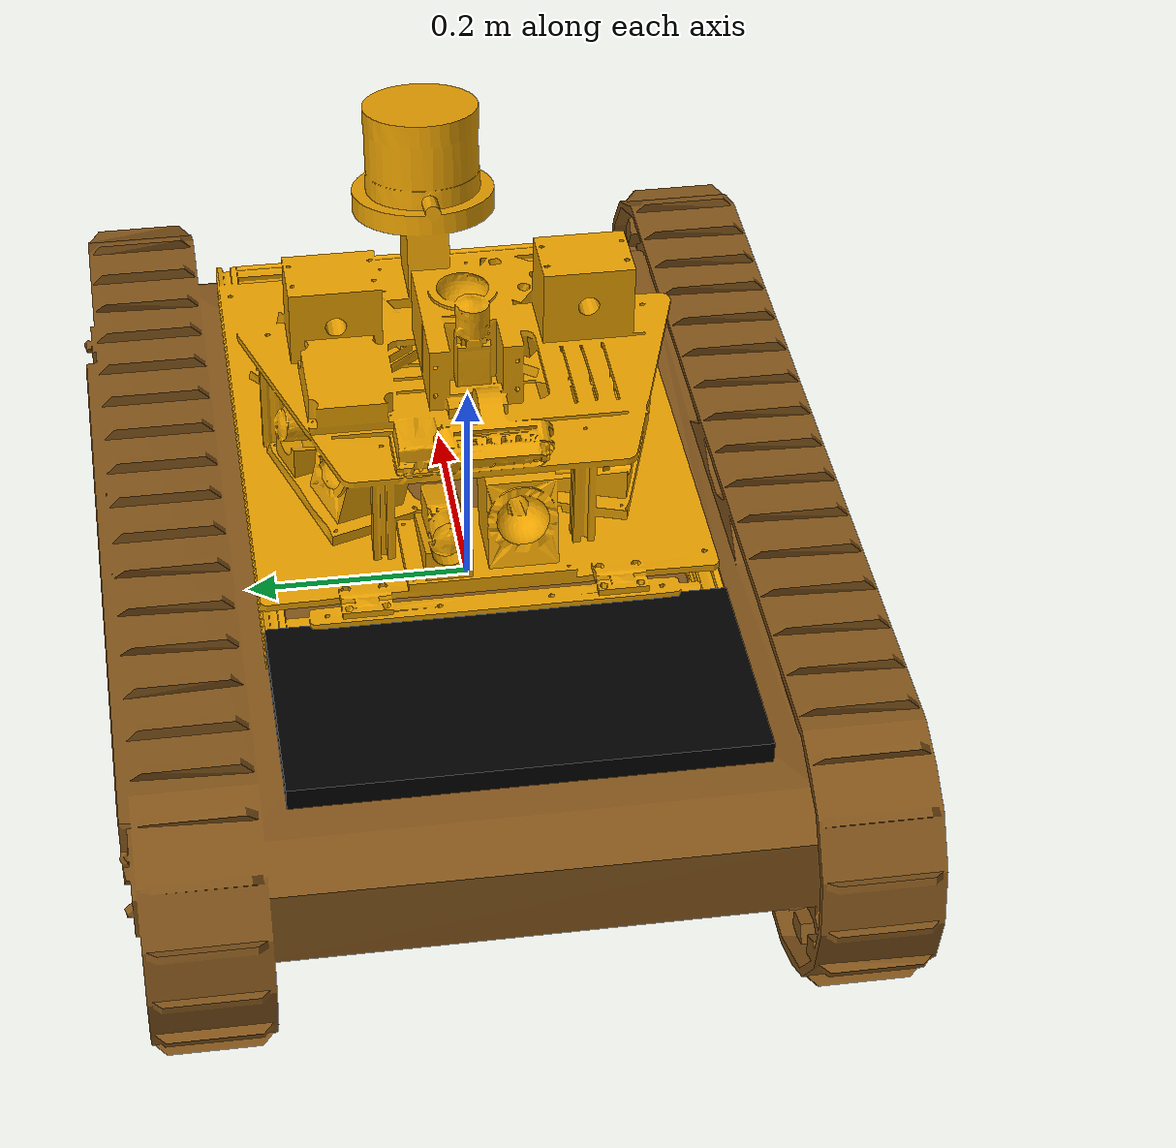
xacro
<?xml version="1.0" ?>
<robot name="marmotte"
  xmlns:xacro="http://ros.org/wiki/xacro">
  <xacro:include filename="$(find marmotte_description)/urdf/sensors_new.urdf.xacro"/>

  <link name="base_link"/>
  <joint name="base_link_initial_joint" type="fixed">
    <parent link="base_link"/>
    <child link="base_link_chassis_CAD"/>
    <origin xyz="0 0  0" rpy="0 0 0"/>
  </joint>

  <link name="footprint_link"/>
  <joint name="footprint_joint" type="fixed">
    <parent link="base_link"/>
    <child link="footprint_link"/>
    <origin xyz="0 0 -0.13" rpy="0 0 0"/>
  </joint>

  <joint name="base_link_to_sensor_rack" type="fixed">
    <parent link="base_link_chassis_CAD"/>
    <child link="sensor_rack_CAD"/>
    <origin xyz="-0.19853 -0.19824  0.06899" rpy="0.e+00  0.e+00 -1.e-05"/>
    <axis xyz="0 0 0"/>
    <limit lower="0" upper="0" effort="0" velocity="0"/>
  </joint>

  <link name="base_link_chassis_CAD">
    <inertial>
      <mass value="29.053"/>
      <origin xyz="0 0 0" rpy="0 0 0"/>
      <inertia ixx="2.411" ixy="0.0" ixz="0.0" iyy="4.173" iyz="0.0" izz="4.745"/>
    </inertial>
    <collision name="base_link_collision_bottom">
      <origin xyz="0    0    0.046" rpy="0 0 0"/>
      <geometry>
        <box size="0.80 0.5709 0.2"/>
      </geometry>
    </collision>
    <visual name="Body_visual">
      <origin xyz="0     0    -0.135" rpy="0   0   1.57"/>
      <geometry>
        <mesh filename="package://marmotte_description/meshes/hd2_marble_base_body_metric.dae" scale="1.0 1.0 1.0"/>
      </geometry>
      <material name="yellow"/>
    </visual>
  </link>

  <joint name="left_track_j" type="fixed">
    <parent link="base_link_chassis_CAD"/>
    <child link="left_track_CAD"/>
    <origin xyz="0   0.26 0" rpy="0 0 0"/>
    <axis xyz="0 0 0"/>
    <limit lower="0" upper="0" effort="0" velocity="0"/>
  </joint>

  <joint name="right_track_j" type="fixed">
    <parent link="base_link_chassis_CAD"/>
    <child link="right_track_CAD"/>
    <origin xyz="0   -0.26  0" rpy="0 0 0"/>
    <axis xyz="0 0 0"/>
    <limit lower="0" upper="0" effort="0" velocity="0"/>
  </joint>

  <link name="left_track_CAD">
    <inertial>
      <mass value="6.0"/>
      <origin xyz="0 0 0" rpy="0 0 0"/>
      <inertia ixx="0.03828" ixy="0" ixz="0" iyy="0.2925" iyz="0" izz="0.2642"/>
    </inertial>
    <collision name="front_left_wheel_link_collision">
      <origin xyz="0.36 0   0" rpy="1.57079 0      0"/>
      <geometry>
        <cylinder radius="0.129" length="0.1"/>
      </geometry>
    </collision>
    <collision name="rear_left_wheel_link_collision">
      <origin xyz="-0.36  0    0" rpy="1.57079 0      0"/>
      <geometry>
        <cylinder radius="0.129" length="0.1"/>
      </geometry>
    </collision>
    <collision name="left_track_box_collision">
      <origin xyz="0 0 0" rpy="0 0 0"/>
      <geometry>
        <box size="0.72 0.1 0.258"/>
      </geometry>
    </collision>
  </link>

  <link name="right_track_CAD">
    <inertial>
      <mass value="6.0"/>
      <origin xyz="0 0 0" rpy="0 0 0"/>
      <inertia ixx="0.03828" ixy="0" ixz="0" iyy="0.2925" iyz="0" izz="0.2642"/>
    </inertial>
    <collision name="front_right_wheel_link_collision">
      <origin xyz="0.36 0   0" rpy="1.57079 0      0"/>
      <geometry>
        <cylinder radius="0.129" length="0.1"/>
      </geometry>
    </collision>
    <collision name="rear_right_wheel_link_collision">
      <origin xyz="-0.36  0    0" rpy="1.57079 0      0"/>
      <geometry>
        <cylinder radius="0.129" length="0.1"/>
      </geometry>
    </collision>
    <collision name="right_track_box_collision">
      <origin xyz="0 0 0" rpy="0 0 0"/>
      <geometry>
        <box size="0.72 0.1 0.258"/>
      </geometry>
    </collision>
  </link>

  <joint name="base_basket" type="fixed">
    <parent link="base_link"/>
    <child link="basket_visualize"/>
    <origin xyz="-0.2765 0 0.1" rpy="0 0 0"/>
  </joint>

  <material name="black">
    <color rgba="0.0 0.0 0.0 1.0"/>
  </material>

  <material name="yellow">
    <color rgba="0.51 0.33 0.1 1.0"/>
  </material>

  <link name="basket_visualize">
    <collision name="basket_visualize_collision">
      <origin xyz="0    0    0" rpy="0 0 0"/>
      <geometry>
        <box size="0.193 0.393 0.02"/>
      </geometry>
    </collision>
    <visual name="basket_visualize_visual">
      <origin xyz="0     0    0" rpy="0   0   0"/>
      <geometry>
        <box size="0.193 0.393 0.02"/>
      </geometry>
      <material name="black"/>
    </visual>
  </link>

  <link name="sensor_rack_CAD">
    <inertial>
      <mass value="10.40255"/>
      <origin xyz="0.28 0.2  0.06" rpy="0 0 0"/>
      <inertia ixx="0.193" ixy="-0.0031" ixz="0.00912" iyy="0.301" iyz="0.00313" izz="0.35676"/>
    </inertial>
    <collision name="collision_base">
      <origin xyz="0.275 0.2   0.075" rpy="0 0 0"/>
      <geometry>
        <box size="0.56 0.4 0.15"/>
      </geometry>
    </collision>
    <collision name="collision_top">
      <origin xyz="0.15  0.2   0.215" rpy="0 0 0"/>
      <geometry>
        <box size="0.28 0.4 0.13"/>
      </geometry>
    </collision>
    <collision name="collision_laser">
      <origin xyz="0.505 0.2   0.17" rpy="0   0.17 0"/>
      <geometry>
        <box size="0.135 0.13 0.13"/>
      </geometry>
    </collision>
    <visual name="visual">
      <origin xyz="0 0 0" rpy="0 0 0"/>
      <geometry>
        <mesh filename="package://marmotte_description/meshes/sensor_rack_lowres_shallow_laser.dae" scale="1 1 1"/>
      </geometry>
    </visual>
  </link>
</robot>

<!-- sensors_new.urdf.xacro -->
<robot name="marmotte" xmlns:xacro="http://www.ros.org/wiki/xacro">

   <xacro:property name="M_PI" value="3.1415926535897931"/>
   <xacro:property name="length_cam" value="0.05" />
   <xacro:property name="configuration_horizon_or_vert" value="true"/>      <!-- True: horiz or vert/ False: old without imu  -->
   <xacro:property name="configuration" value="horizontal"/>      <!-- horizontal, horizontal_90, vertical -->

   <xacro:if value="${configuration_horizon_or_vert}">
      <!-- Horizontal board -->
      <xacro:if value="${configuration != 'vertical'}">
         <link name="lidar_imu_mount_horizontal"/>
         <joint name="lidar_imu_mount_horizontal_joint" type="fixed">
            <origin xyz="-0.08866 0 0.393975" rpy="0 0 ${M_PI}" />
            <parent link="base_link" />
            <child link="lidar_imu_mount_horizontal" />
         </joint>
      </xacro:if>

      <!-- Vertical board -->
      <xacro:if value="${configuration == 'vertical'}">
         <link name="lidar_imu_mount_vertical"/>
         <joint name="lidar_imu_mount_vertical_joint" type="fixed">
            <origin xyz="0.17883 -0.02 0.36878" rpy="${M_PI/2} 0 0" />
            <parent link="base_link" />
            <child link="lidar_imu_mount_vertical" />
         </joint>
      </xacro:if>

      <joint name="lidar_imu_board_joint" type="fixed">
      <xacro:if value="${configuration != 'horizontal_90'}">
         <origin xyz="0.06 -0.06 0.039" rpy="0 0 0" />
      </xacro:if>
      <xacro:if value="${configuration == 'horizontal_90'}">
         <origin xyz="0.06 -0.06 0.039" rpy="0 0 ${M_PI/2}" />
      </xacro:if>
      <xacro:if value="${configuration != 'vertical'}">
         <parent link="lidar_imu_mount_horizontal" />
      </xacro:if>
      <xacro:if value="${configuration == 'vertical'}">
         <parent link="lidar_imu_mount_vertical" />
      </xacro:if>
      <child link="lidar_imu_board" />
      </joint>

      <joint name="lidar_link_joint" type="fixed">
          <origin xyz="0 0 0.0377" rpy="0 0 ${M_PI}" />
         <parent link="lidar_imu_board" />
         <child link="lidar_link" />
      </joint>

      <joint name="imu_joint" type="fixed">
         <origin xyz="-0.02075 0.01726 -0.0161" rpy="${M_PI} 0.0 ${M_PI}" />
         <parent link="lidar_imu_board" />
         <child link="imu" />
      </joint>
   <link name="lidar_imu_board"/>
   </xacro:if>

   <xacro:unless value="${configuration_horizon_or_vert}">
      <joint name="lslidarc16_joint" type="fixed">
         <origin xyz="0.25834 0 0.30611" rpy="0 -0.178 ${M_PI}" />
         <parent link="base_link" />
         <child link="lidar_link" />
      </joint>
      <joint name="imu_joint" type="fixed">
         <origin xyz="-0.05718 -0.103 0.2885" rpy="0 0 0" />
         <parent link="base_link" />
         <child link="imu" />
      </joint>
   </xacro:unless>

   <link name="lidar_link"/>

   <link name="imu"/>

   <link name="camera0_link"/>

   <link name="camera1_link"/>

   <link name="camera2_link"/>

   <link name="camera3_link"/>

   <link name="camera4_link"/>

   <joint name="joint_lidar_camera0" type="fixed">
      <parent link="base_link" />
      <child link="camera0_link" />
      <!--origin xyz="0.15809 0.12394 -0.08268" rpy="-1.167301 0.102245 0.949740" /--> <!--Before origin changed-->
      <!--origin xyz="0.12759 0.1461 -0.07258" rpy="-1.167301 0.102245 0.949740" /--> <!-- After origin changed-->
      <origin xyz="0.10593 -0.12806 0.219" rpy="-1.3089969389957472 0.0 -2.1991148575128556" />
   </joint>

   <joint name="joint_lidar_camera1" type="fixed">
      <parent link="base_link" />
      <child link="camera1_link" />
      <!--origin xyz="0.34382 0.09629 -0.08268" rpy="-1.3634311444 0.165909317 -0.318686332" /--> <!--Before origin changed-->
      <!--origin xyz="0.35547 0.13215 -0.07258" rpy="-1.3634311444 0.165909317 -0.318686332" /--> <!--After origin changed-->
      <origin xyz="-0.08765 -0.10297 0.219" rpy="-1.3089969389957472 0.0 2.827433388230814" />
   </joint>

   <joint name="joint_lidar_camera2" type="fixed">
      <parent link="base_link" />
      <child link="camera2_link" />
      <!--origin xyz="0.41006 -0.03625 -0.08268" rpy="-1.48352986 0 -1.57079632" /--> <!--Before origin changed-->
      <!--origin xyz="0.45576 -0.03625 -0.07258" rpy="-1.48352986 0 -1.57079632" /--> <!--After origin changed-->
      <origin xyz="-0.16674 0.03625 0.219" rpy="-1.3089969389957472 0.0 1.5707963267948966" />
   </joint>

   <joint name="joint_lidar_camera3" type="fixed">
      <parent link="base_link" />
      <child link="camera3_link" />
      <!--origin xyz="0.27487 -0.11869 -0.08268" rpy="-1.3634311444 -0.165909317 -2.82290632" /--> <!--Before origin changed-->
      <!--origin xyz="0.28652 -0.15455 -0.07258" rpy="-1.3634311444 -0.165909317 -2.82290632" /--> <!--After origin changed-->
      <origin xyz="-0.0187 0.12537 0.219" rpy="-1.3089969389957472 0.0 0.3141592653589792" />
   </joint>

   <joint name="joint_lidar_camera4" type="fixed">
      <parent link="base_link" />
      <child link="camera4_link" />
      <!--origin xyz="0.11548 -0.06528 -0.08268" rpy="-1.167301 -0.102245 2.19185" /--> <!--Before origin changed-->
      <!--origin xyz="0.08497 -0.08744 -0.07258" rpy="-1.167301 -0.102245 2.19185" /--> <!--After origin changed-->
      <origin xyz="0.14854 0.06941 0.219" rpy="-1.3089969389957472 2.220446049250313e-16 -0.9424777960769379" />
   </joint>

  <link name="dps310_marmotte" />
  <joint name="dps310_marmotte_joint" type="fixed">
    <origin xyz="-0.115 -0.02 -0.122" rpy="0 0.0 0" />
    <parent link="lidar_link" />
    <child link="dps310_marmotte" />
  </joint>

</robot>
